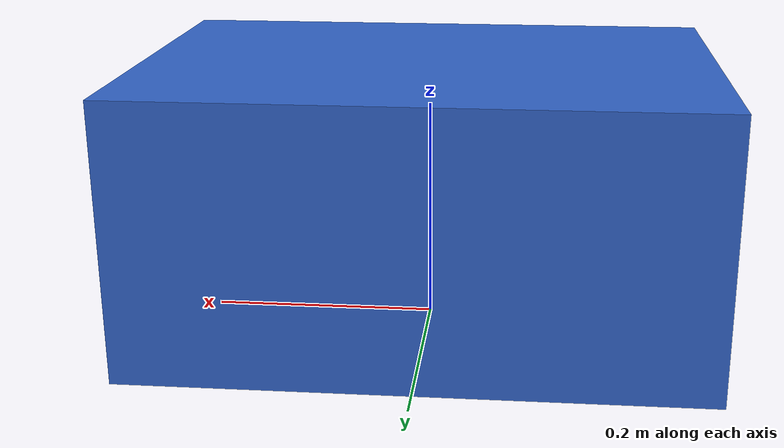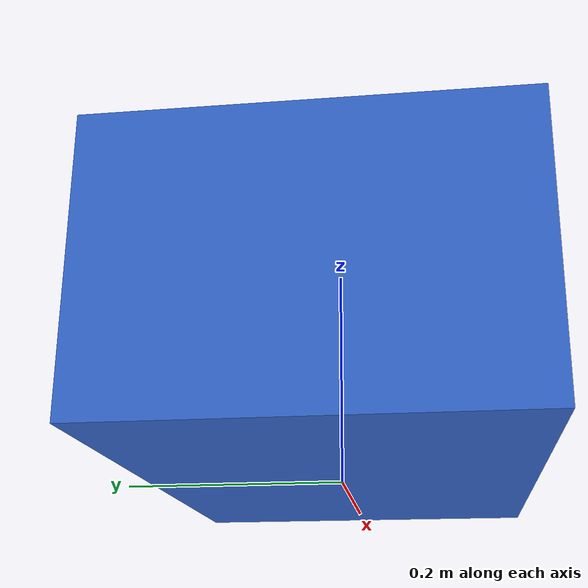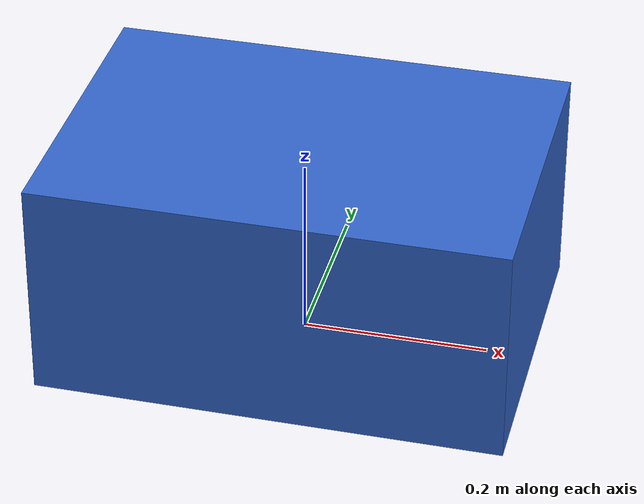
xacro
<?xml version="1.0"?>
<robot name="telemetry_bot" xmlns:xacro="http://www.ros.org/wiki/xacro">
  <!-- Base body -->
  <link name="base_link">
    <inertial>
      <origin xyz="0 0 0" rpy="0 0 0"/>
      <mass value="8.0"/>
      <inertia ixx="0.30" ixy="0.0" ixz="0.0" iyy="0.30" iyz="0.0" izz="0.30"/>
    </inertial>
    <visual>
      <origin xyz="0 0 0.12" rpy="0 0 0"/>
      <geometry>
        <box size="0.50 0.35 0.24"/>
      </geometry>
      <material name="blue">
        <color rgba="0.2 0.4 0.8 1.0"/>
      </material>
    </visual>
    <collision>
      <origin xyz="0 0 0.12" rpy="0 0 0"/>
      <geometry>
        <box size="0.50 0.35 0.24"/>
      </geometry>
    </collision>
  </link>

  <!-- LiDAR mount -->
  <link name="laser_link"/>
  <joint name="laser_joint" type="fixed">
    <parent link="base_link"/>
    <child link="laser_link"/>
    <origin xyz="0.20 0.0 0.22" rpy="0 0 0"/>
  </joint>

  <!-- IMU publisher -->
  <gazebo reference="base_link">
    <plugin name="imu_plugin" filename="libgazebo_ros_imu_sensor.so">
      <ros>
        <namespace>/</namespace>
        <remapping>~/out:=/imu</remapping>
      </ros>
      <update_rate>50.0</update_rate>
      <frame_name>base_link</frame_name>
    </plugin>
  </gazebo>

  <!-- Odom publisher from Gazebo pose -->
  <gazebo reference="base_link">
    <plugin name="odom_plugin" filename="libgazebo_ros_p3d.so">
      <ros>
        <namespace>/</namespace>
        <remapping>odom:=/odom</remapping>
      </ros>
      <body_name>base_link</body_name>
      <frame_name>odom</frame_name>
      <update_rate>30.0</update_rate>
      <gaussian_noise>0.0</gaussian_noise>
    </plugin>
  </gazebo>

  <!-- 2D LiDAR publisher -->
  <gazebo reference="laser_link">
    <sensor type="ray" name="lidar_sensor">
      <pose>0 0 0 0 0 0</pose>
      <update_rate>10.0</update_rate>
      <ray>
        <scan>
          <horizontal>
            <samples>360</samples>
            <resolution>1</resolution>
            <min_angle>-3.14159</min_angle>
            <max_angle>3.14159</max_angle>
          </horizontal>
        </scan>
        <range>
          <min>0.10</min>
          <max>12.0</max>
          <resolution>0.01</resolution>
        </range>
      </ray>
      <plugin name="lidar_plugin" filename="libgazebo_ros_ray_sensor.so">
        <ros>
          <namespace>/</namespace>
          <remapping>~/out:=/scan</remapping>
        </ros>
        <frame_name>laser_link</frame_name>
      </plugin>
    </sensor>
  </gazebo>
</robot>
